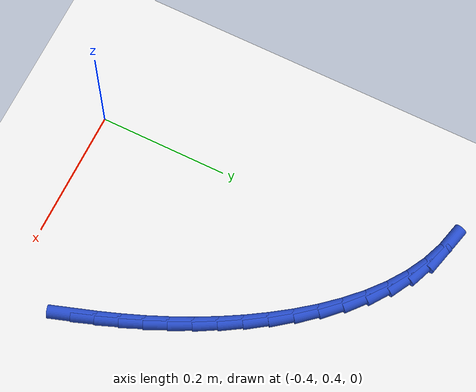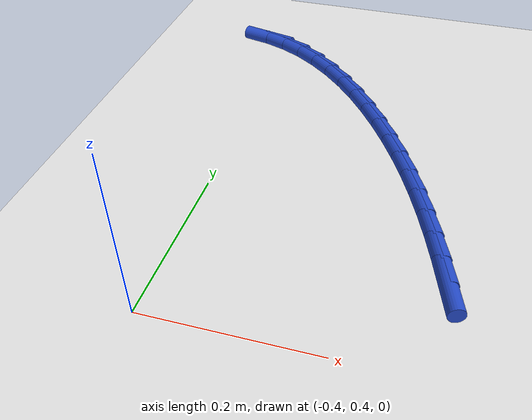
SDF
<sdf version="1.6">
 <world name="default">
  <model name="ground_plane">
   <static>1</static>
   <link name="link">
    <collision name="collision">
     <geometry><plane><normal>0 0 1</normal><size>100 100</size></plane></geometry>
     <surface><friction><ode><mu>100</mu><mu2>50</mu2></ode></friction></surface>
    </collision>
    <visual name="visual">
     <cast_shadows>0</cast_shadows>
     <geometry><plane><normal>0 0 1</normal><size>100 100</size></plane></geometry>
     <material>
      <script><uri>file://media/materials/scripts/gazebo.material</uri><name>Gazebo/WhiteGlow</name></script>
     </material>
    </visual>
   </link>
  </model>
  <model name="line">
   <link name="link_15">
    <pose>-0.10323991534454893 0.5099445897085939 0.01 0 1.57 -1.2441291836012394</pose>
    <collision name="collision">
     <geometry><cylinder><radius>0.01</radius><length>0.08</length></cylinder></geometry>
    </collision>
    <visual name="visual">
     <material>
      <script><name>Gazebo/Blue</name><uri>file://media/materials/scripts/gazebo.material</uri></script>
     </material>
     <geometry><cylinder><radius>0.01</radius><length>0.08</length></cylinder></geometry>
    </visual>
   </link>
   <link name="link_16">
    <pose>-0.11435834267667627 0.5427611657979505 0.01 0 1.57 -1.2178511080925096</pose>
    <collision name="collision">
     <geometry><cylinder><radius>0.01</radius><length>0.08</length></cylinder></geometry>
    </collision>
    <visual name="visual">
     <material>
      <script><name>Gazebo/Blue</name><uri>file://media/materials/scripts/gazebo.material</uri></script>
     </material>
     <geometry><cylinder><radius>0.01</radius><length>0.08</length></cylinder></geometry>
    </visual>
   </link>
   <link name="link_17">
    <pose>-0.12635926319420096 0.5753396291698378 0.01 0 1.57 -1.1885836641636707</pose>
    <collision name="collision">
     <geometry><cylinder><radius>0.01</radius><length>0.08</length></cylinder></geometry>
    </collision>
    <visual name="visual">
     <material>
      <script><name>Gazebo/Blue</name><uri>file://media/materials/scripts/gazebo.material</uri></script>
     </material>
     <geometry><cylinder><radius>0.01</radius><length>0.08</length></cylinder></geometry>
    </visual>
   </link>
   <link name="link_18">
    <pose>-0.1393511439992705 0.6076592967173458 0.01 0 1.57 -1.15645615554688</pose>
    <collision name="collision">
     <geometry><cylinder><radius>0.01</radius><length>0.08</length></cylinder></geometry>
    </collision>
    <visual name="visual">
     <material>
      <script><name>Gazebo/Blue</name><uri>file://media/materials/scripts/gazebo.material</uri></script>
     </material>
     <geometry><cylinder><radius>0.01</radius><length>0.08</length></cylinder></geometry>
    </visual>
   </link>
   <link name="link_19">
    <pose>-0.15344245219403263 0.6396994853335645 0.01 0 1.57 -1.1216390971331887</pose>
    <collision name="collision">
     <geometry><cylinder><radius>0.01</radius><length>0.08</length></cylinder></geometry>
    </collision>
    <visual name="visual">
     <material>
      <script><name>Gazebo/Blue</name><uri>file://media/materials/scripts/gazebo.material</uri></script>
     </material>
     <geometry><cylinder><radius>0.01</radius><length>0.08</length></cylinder></geometry>
    </visual>
   </link>
   <link name="link_20">
    <pose>-0.16874165488063492 0.6714395119115835 0.01 0 1.57 -1.0843476659231157</pose>
    <collision name="collision">
     <geometry><cylinder><radius>0.01</radius><length>0.08</length></cylinder></geometry>
    </collision>
    <visual name="visual">
     <material>
      <script><name>Gazebo/Blue</name><uri>file://media/materials/scripts/gazebo.material</uri></script>
     </material>
     <geometry><cylinder><radius>0.01</radius><length>0.08</length></cylinder></geometry>
    </visual>
   </link>
   <link name="link_21">
    <pose>-0.185357219161225 0.7028586933444928 0.01 0 1.57 -1.0448429200627718</pose>
    <collision name="collision">
     <geometry><cylinder><radius>0.01</radius><length>0.08</length></cylinder></geometry>
    </collision>
    <visual name="visual">
     <material>
      <script><name>Gazebo/Blue</name><uri>file://media/materials/scripts/gazebo.material</uri></script>
     </material>
     <geometry><cylinder><radius>0.01</radius><length>0.08</length></cylinder></geometry>
    </visual>
   </link>
   <link name="link_22">
    <pose>-0.20339761213795055 0.7339363465253829 0.01 0 1.57 -1.0032738686366145</pose>
    <collision name="collision">
     <geometry><cylinder><radius>0.01</radius><length>0.08</length></cylinder></geometry>
    </collision>
    <visual name="visual">
     <material>
      <script><name>Gazebo/Blue</name><uri>file://media/materials/scripts/gazebo.material</uri></script>
     </material>
     <geometry><cylinder><radius>0.01</radius><length>0.08</length></cylinder></geometry>
    </visual>
   </link>
   <link name="link_23">
    <pose>-0.22296567955077506 0.7646323812961567 0.01 0 1.57 -0.9575760021214456</pose>
    <collision name="collision">
     <geometry><cylinder><radius>0.01</radius><length>0.08</length></cylinder></geometry>
    </collision>
    <visual name="visual">
     <material>
      <script><name>Gazebo/Blue</name><uri>file://media/materials/scripts/gazebo.material</uri></script>
     </material>
     <geometry><cylinder><radius>0.01</radius><length>0.08</length></cylinder></geometry>
    </visual>
   </link>
   <link name="link_24">
    <pose>-0.24409000756926694 0.7946503356022766 0.01 0 1.57 -0.9052711009615187</pose>
    <collision name="collision">
     <geometry><cylinder><radius>0.01</radius><length>0.08</length></cylinder></geometry>
    </collision>
    <visual name="visual">
     <material>
      <script><name>Gazebo/Blue</name><uri>file://media/materials/scripts/gazebo.material</uri></script>
     </material>
     <geometry><cylinder><radius>0.01</radius><length>0.08</length></cylinder></geometry>
    </visual>
   </link>
   <link name="link_25">
    <pose>-0.26674667125949636 0.8235124593597093 0.01 0 1.57 -0.844888720168654</pose>
    <collision name="collision">
     <geometry><cylinder><radius>0.01</radius><length>0.08</length></cylinder></geometry>
    </collision>
    <visual name="visual">
     <material>
      <script><name>Gazebo/Blue</name><uri>file://media/materials/scripts/gazebo.material</uri></script>
     </material>
     <geometry><cylinder><radius>0.01</radius><length>0.08</length></cylinder></geometry>
    </visual>
   </link>
   <link name="link_26">
    <pose>-0.29091063843119636 0.850737179820145 0.01 0 1.57 -0.7747488530673151</pose>
    <collision name="collision">
     <geometry><cylinder><radius>0.01</radius><length>0.08</length></cylinder></geometry>
    </collision>
    <visual name="visual">
     <material>
      <script><name>Gazebo/Blue</name><uri>file://media/materials/scripts/gazebo.material</uri></script>
     </material>
     <geometry><cylinder><radius>0.01</radius><length>0.08</length></cylinder></geometry>
    </visual>
   </link>
   <link name="link_27">
    <pose>-0.3165568768941006 0.8758429242352748 0.01 0 1.57 -0.6929711703929071</pose>
    <collision name="collision">
     <geometry><cylinder><radius>0.01</radius><length>0.08</length></cylinder></geometry>
    </collision>
    <visual name="visual">
     <material>
      <script><name>Gazebo/Blue</name><uri>file://media/materials/scripts/gazebo.material</uri></script>
     </material>
     <geometry><cylinder><radius>0.01</radius><length>0.08</length></cylinder></geometry>
    </visual>
   </link>
   <link name="link_28">
    <pose>-0.34366035445794235 0.8983481198567891 0.01 0 1.57 -0.5976272358362587</pose>
    <collision name="collision">
     <geometry><cylinder><radius>0.01</radius><length>0.08</length></cylinder></geometry>
    </collision>
    <visual name="visual">
     <material>
      <script><name>Gazebo/Blue</name><uri>file://media/materials/scripts/gazebo.material</uri></script>
     </material>
     <geometry><cylinder><radius>0.01</radius><length>0.08</length></cylinder></geometry>
    </visual>
   </link>
   <link name="link_29">
    <pose>-0.37219603893245484 0.9177711939363792 0.01 0 1.57 -0.4870890610263122</pose>
    <collision name="collision">
     <geometry><cylinder><radius>0.01</radius><length>0.08</length></cylinder></geometry>
    </collision>
    <visual name="visual">
     <material>
      <script><name>Gazebo/Blue</name><uri>file://media/materials/scripts/gazebo.material</uri></script>
     </material>
     <geometry><cylinder><radius>0.01</radius><length>0.08</length></cylinder></geometry>
    </visual>
   </link>
   <link name="link_30">
    <pose>-0.4021388981273718 0.9336305737257355 0.01 0 1.57 -0.3606638599698141</pose>
    <collision name="collision">
     <geometry><cylinder><radius>0.01</radius><length>0.08</length></cylinder></geometry>
    </collision>
    <visual name="visual">
     <material>
      <script><name>Gazebo/Blue</name><uri>file://media/materials/scripts/gazebo.material</uri></script>
     </material>
     <geometry><cylinder><radius>0.01</radius><length>0.08</length></cylinder></geometry>
    </visual>
   </link>
   <link name="link_31">
    <pose>-0.43346383465431504 0.9454451167405508 0.01 0 1.57 -0.2282722434890307</pose>
    <collision name="collision">
     <geometry><cylinder><radius>0.01</radius><length>0.08</length></cylinder></geometry>
    </collision>
    <visual name="visual">
     <material>
      <script><name>Gazebo/Blue</name><uri>file://media/materials/scripts/gazebo.material</uri></script>
     </material>
     <geometry><cylinder><radius>0.01</radius><length>0.08</length></cylinder></geometry>
    </visual>
   </link>
  </model>
 </world>
</sdf>
